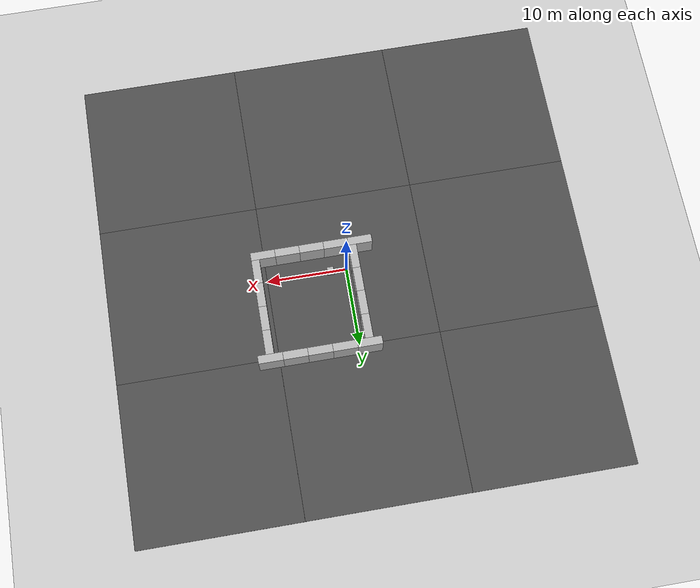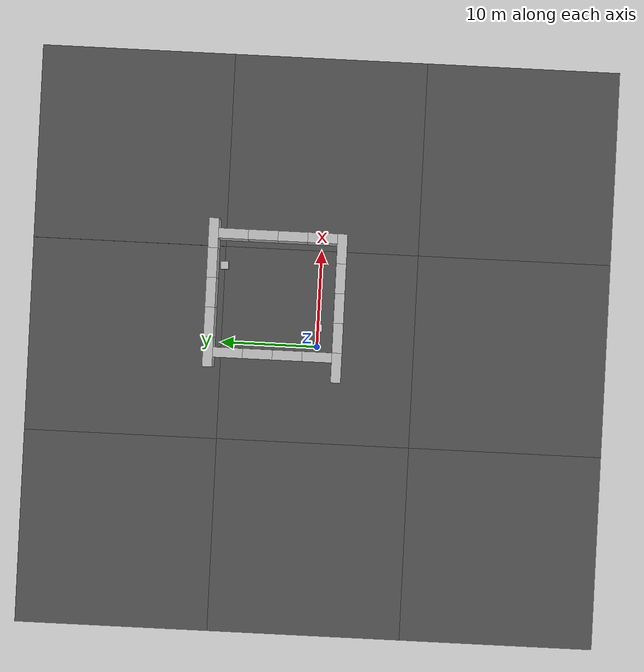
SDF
<sdf version="1.7">
 <world name="default">
  <light name="sun" type="directional">
   <pose>0 0 10 0 -0 0</pose>
   <diffuse>0.8 0.8 0.8 1</diffuse>
   <specular>0.2 0.2 0.2 1</specular>
   <attenuation>
    <range>1000</range>
    <constant>0.9</constant>
    <linear>0.01</linear>
    <quadratic>0.001</quadratic>
   </attenuation>
   <direction>-0.5 0.1 -0.9</direction>
   <spot><inner_angle>0</inner_angle><outer_angle>0</outer_angle><falloff>0</falloff></spot>
  </light>
  <model name="ground_plane">
   <static>1</static>
   <link name="link">
    <collision name="collision">
     <geometry><plane><normal>0 0 1</normal><size>100 100</size></plane></geometry>
     <surface><friction><ode><mu>100</mu><mu2>50</mu2></ode></friction></surface>
    </collision>
    <visual name="visual">
     <cast_shadows>0</cast_shadows>
     <geometry><plane><normal>0 0 1</normal><size>100 100</size></plane></geometry>
     <material>
      <script><uri>file://media/materials/scripts/gazebo.material</uri><name>Gazebo/Grey</name></script>
     </material>
    </visual>
   </link>
  </model>
  <model name="asphalt_plane">
   <static>1</static>
   <link name="link">
    <collision name="collision"><geometry><box><size>20 20 0.1</size></box></geometry></collision>
    <visual name="visual">
     <cast_shadows>0</cast_shadows>
     <geometry><box><size>20 20 0.1</size></box></geometry>
     <material>
      <script>
       <uri>model://asphalt_plane/materials/scripts</uri>
       <uri>model://asphalt_plane/materials/textures</uri>
       <name>vrc/asphalt</name>
      </script>
     </material>
    </visual>
   </link>
  </model>
  <physics name="default_physics" default="0" type="ode">
   <ode>
    <solver>
     <type>quick</type>
     <iters>10</iters>
     <sor>1.3</sor>
     <use_dynamic_moi_rescaling>0</use_dynamic_moi_rescaling>
    </solver>
    <constraints>
     <cfm>0</cfm>
     <erp>0.2</erp>
     <contact_max_correcting_vel>100</contact_max_correcting_vel>
     <contact_surface_layer>0.001</contact_surface_layer>
    </constraints>
   </ode>
   <max_step_size>0.004</max_step_size>
   <real_time_factor>1</real_time_factor>
   <real_time_update_rate>250</real_time_update_rate>
  </physics>
  <gravity>0 0 -9.8066</gravity>
  <magnetic_field>6e-06 2.3e-05 -4.2e-05</magnetic_field>
  <atmosphere type="adiabatic"/>
  <scene><ambient>0.4 0.4 0.4 1</ambient><background>0.7 0.7 0.7 1</background><shadows>1</shadows></scene>
  <model name="asphalt_plane_clone">
   <static>1</static>
   <link name="link">
    <collision name="collision"><geometry><box><size>20 20 0.1</size></box></geometry></collision>
    <visual name="visual">
     <cast_shadows>0</cast_shadows>
     <geometry><box><size>20 20 0.1</size></box></geometry>
     <material>
      <script>
       <uri>model://asphalt_plane/materials/scripts</uri>
       <uri>model://asphalt_plane/materials/textures</uri>
       <name>vrc/asphalt</name>
      </script>
     </material>
    </visual>
   </link>
   <pose>20 0 0 0 -0 0</pose>
  </model>
  <model name="asphalt_plane_clone_0">
   <static>1</static>
   <link name="link">
    <collision name="collision"><geometry><box><size>20 20 0.1</size></box></geometry></collision>
    <visual name="visual">
     <cast_shadows>0</cast_shadows>
     <geometry><box><size>20 20 0.1</size></box></geometry>
     <material>
      <script>
       <uri>model://asphalt_plane/materials/scripts</uri>
       <uri>model://asphalt_plane/materials/textures</uri>
       <name>vrc/asphalt</name>
      </script>
     </material>
    </visual>
   </link>
   <pose>0 -20 0 0 -0 0</pose>
  </model>
  <model name="asphalt_plane_clone_1">
   <static>1</static>
   <link name="link">
    <collision name="collision"><geometry><box><size>20 20 0.1</size></box></geometry></collision>
    <visual name="visual">
     <cast_shadows>0</cast_shadows>
     <geometry><box><size>20 20 0.1</size></box></geometry>
     <material>
      <script>
       <uri>model://asphalt_plane/materials/scripts</uri>
       <uri>model://asphalt_plane/materials/textures</uri>
       <name>vrc/asphalt</name>
      </script>
     </material>
    </visual>
   </link>
   <pose>20 -20 0 0 -0 0</pose>
  </model>
  <model name="asphalt_plane_clone_clone">
   <static>1</static>
   <link name="link">
    <collision name="collision"><geometry><box><size>20 20 0.1</size></box></geometry></collision>
    <visual name="visual">
     <cast_shadows>0</cast_shadows>
     <geometry><box><size>20 20 0.1</size></box></geometry>
     <material>
      <script>
       <uri>model://asphalt_plane/materials/scripts</uri>
       <uri>model://asphalt_plane/materials/textures</uri>
       <name>vrc/asphalt</name>
      </script>
     </material>
    </visual>
   </link>
   <pose>20 20 0 0 -0 0</pose>
  </model>
  <model name="asphalt_plane_clone_clone_0">
   <static>1</static>
   <link name="link">
    <collision name="collision"><geometry><box><size>20 20 0.1</size></box></geometry></collision>
    <visual name="visual">
     <cast_shadows>0</cast_shadows>
     <geometry><box><size>20 20 0.1</size></box></geometry>
     <material>
      <script>
       <uri>model://asphalt_plane/materials/scripts</uri>
       <uri>model://asphalt_plane/materials/textures</uri>
       <name>vrc/asphalt</name>
      </script>
     </material>
    </visual>
   </link>
   <pose>-0.007919 19.9917 0 0 -0 0</pose>
  </model>
  <model name="asphalt_plane_clone_clone_1">
   <static>1</static>
   <link name="link">
    <collision name="collision"><geometry><box><size>20 20 0.1</size></box></geometry></collision>
    <visual name="visual">
     <cast_shadows>0</cast_shadows>
     <geometry><box><size>20 20 0.1</size></box></geometry>
     <material>
      <script>
       <uri>model://asphalt_plane/materials/scripts</uri>
       <uri>model://asphalt_plane/materials/textures</uri>
       <name>vrc/asphalt</name>
      </script>
     </material>
    </visual>
   </link>
   <pose>-20 20 0 0 -0 0</pose>
  </model>
  <model name="asphalt_plane_clone_clone_2">
   <static>1</static>
   <link name="link">
    <collision name="collision"><geometry><box><size>20 20 0.1</size></box></geometry></collision>
    <visual name="visual">
     <cast_shadows>0</cast_shadows>
     <geometry><box><size>20 20 0.1</size></box></geometry>
     <material>
      <script>
       <uri>model://asphalt_plane/materials/scripts</uri>
       <uri>model://asphalt_plane/materials/textures</uri>
       <name>vrc/asphalt</name>
      </script>
     </material>
    </visual>
   </link>
   <pose>-20 0 0 0 -0 0</pose>
  </model>
  <model name="asphalt_plane_clone_clone_3">
   <static>1</static>
   <link name="link">
    <collision name="collision"><geometry><box><size>20 20 0.1</size></box></geometry></collision>
    <visual name="visual">
     <cast_shadows>0</cast_shadows>
     <geometry><box><size>20 20 0.1</size></box></geometry>
     <material>
      <script>
       <uri>model://asphalt_plane/materials/scripts</uri>
       <uri>model://asphalt_plane/materials/textures</uri>
       <name>vrc/asphalt</name>
      </script>
     </material>
    </visual>
   </link>
   <pose>-20 -20 0 0 -0 0</pose>
  </model>
  <model name="number1_clone">
   <pose>2 0 0.4 0 -0 0</pose>
   <static>1</static>
   <link name="link">
    <visual name="visual">
     <geometry><mesh><uri>model://number1/meshes/number.dae</uri></mesh></geometry>
     <material>
      <script>
       <uri>model://number1/materials/scripts</uri>
       <uri>model://number1/materials/textures</uri>
       <name>Number/One</name>
      </script>
     </material>
    </visual>
   </link>
  </model>
  <model name="number2_clone_clone">
   <pose>8 10 0.4 0 -0 0</pose>
   <static>1</static>
   <link name="link">
    <visual name="visual">
     <geometry><mesh><uri>model://number1/meshes/number.dae</uri></mesh></geometry>
     <material>
      <script>
       <uri>model://number2/materials/scripts</uri>
       <uri>model://number2/materials/textures</uri>
       <name>Number/Two</name>
      </script>
     </material>
    </visual>
   </link>
  </model>
  <model name="brick_box_3x1x3">
   <static>1</static>
   <link name="chassis">
    <pose>0 0 1.5 0 -0 0</pose>
    <collision name="collision"><geometry><box><size>3 1 3</size></box></geometry></collision>
    <visual name="visual">
     <geometry><mesh><uri>model://brick_box_3x1x3/meshes/simple_box.dae</uri><scale>3 1 3</scale></mesh></geometry>
     <material>
      <script>
       <uri>model://brick_box_3x1x3/materials/scripts</uri>
       <uri>model://brick_box_3x1x3/materials/textures</uri>
       <name>BrickBox/Diffuse</name>
      </script>
     </material>
    </visual>
   </link>
   <pose>11 11 1.5 0 -0 0</pose>
  </model>
  <model name="brick_box_3x1x3_clone">
   <static>1</static>
   <link name="chassis">
    <pose>0 0 1.5 0 -0 0</pose>
    <collision name="collision"><geometry><box><size>3 1 3</size></box></geometry></collision>
    <visual name="visual">
     <geometry><mesh><uri>model://brick_box_3x1x3/meshes/simple_box.dae</uri><scale>3 1 3</scale></mesh></geometry>
     <material>
      <script>
       <uri>model://brick_box_3x1x3/materials/scripts</uri>
       <uri>model://brick_box_3x1x3/materials/textures</uri>
       <name>BrickBox/Diffuse</name>
      </script>
     </material>
    </visual>
   </link>
   <pose>8 11 1.5 0 -0 0</pose>
  </model>
  <model name="brick_box_3x1x3_clone_clone">
   <static>1</static>
   <link name="chassis">
    <pose>0 0 1.5 0 -0 0</pose>
    <collision name="collision"><geometry><box><size>3 1 3</size></box></geometry></collision>
    <visual name="visual">
     <geometry><mesh><uri>model://brick_box_3x1x3/meshes/simple_box.dae</uri><scale>3 1 3</scale></mesh></geometry>
     <material>
      <script>
       <uri>model://brick_box_3x1x3/materials/scripts</uri>
       <uri>model://brick_box_3x1x3/materials/textures</uri>
       <name>BrickBox/Diffuse</name>
      </script>
     </material>
    </visual>
   </link>
   <pose>5 11 1.5 0 -0 0</pose>
  </model>
  <model name="brick_box_3x1x3_clone_clone_clone">
   <static>1</static>
   <link name="chassis">
    <pose>0 0 1.5 0 -0 0</pose>
    <collision name="collision"><geometry><box><size>3 1 3</size></box></geometry></collision>
    <visual name="visual">
     <geometry><mesh><uri>model://brick_box_3x1x3/meshes/simple_box.dae</uri><scale>3 1 3</scale></mesh></geometry>
     <material>
      <script>
       <uri>model://brick_box_3x1x3/materials/scripts</uri>
       <uri>model://brick_box_3x1x3/materials/textures</uri>
       <name>BrickBox/Diffuse</name>
      </script>
     </material>
    </visual>
   </link>
   <pose>2 11 1.5 0 -0 0</pose>
  </model>
  <model name="brick_box_3x1x3_clone_0">
   <static>1</static>
   <link name="chassis">
    <pose>0 0 1.5 0 -0 0</pose>
    <collision name="collision"><geometry><box><size>3 1 3</size></box></geometry></collision>
    <visual name="visual">
     <geometry><mesh><uri>model://brick_box_3x1x3/meshes/simple_box.dae</uri><scale>3 1 3</scale></mesh></geometry>
     <material>
      <script>
       <uri>model://brick_box_3x1x3/materials/scripts</uri>
       <uri>model://brick_box_3x1x3/materials/textures</uri>
       <name>BrickBox/Diffuse</name>
      </script>
     </material>
    </visual>
   </link>
   <pose>11 9 1.5 0 -0 1.57</pose>
  </model>
  <model name="brick_box_3x1x3_clone_0_clone">
   <static>1</static>
   <link name="chassis">
    <pose>0 0 1.5 0 -0 0</pose>
    <collision name="collision"><geometry><box><size>3 1 3</size></box></geometry></collision>
    <visual name="visual">
     <geometry><mesh><uri>model://brick_box_3x1x3/meshes/simple_box.dae</uri><scale>3 1 3</scale></mesh></geometry>
     <material>
      <script>
       <uri>model://brick_box_3x1x3/materials/scripts</uri>
       <uri>model://brick_box_3x1x3/materials/textures</uri>
       <name>BrickBox/Diffuse</name>
      </script>
     </material>
    </visual>
   </link>
   <pose>11 6 1.5 0 -0 1.57</pose>
  </model>
  <model name="brick_box_3x1x3_clone_0_clone_0">
   <static>1</static>
   <link name="chassis">
    <pose>0 0 1.5 0 -0 0</pose>
    <collision name="collision"><geometry><box><size>3 1 3</size></box></geometry></collision>
    <visual name="visual">
     <geometry><mesh><uri>model://brick_box_3x1x3/meshes/simple_box.dae</uri><scale>3 1 3</scale></mesh></geometry>
     <material>
      <script>
       <uri>model://brick_box_3x1x3/materials/scripts</uri>
       <uri>model://brick_box_3x1x3/materials/textures</uri>
       <name>BrickBox/Diffuse</name>
      </script>
     </material>
    </visual>
   </link>
   <pose>11 3 1.5 0 -0 1.57</pose>
  </model>
  <model name="brick_box_3x1x3_clone_0_clone_0_clone">
   <static>1</static>
   <link name="chassis">
    <pose>0 0 1.5 0 -0 0</pose>
    <collision name="collision"><geometry><box><size>3 1 3</size></box></geometry></collision>
    <visual name="visual">
     <geometry><mesh><uri>model://brick_box_3x1x3/meshes/simple_box.dae</uri><scale>3 1 3</scale></mesh></geometry>
     <material>
      <script>
       <uri>model://brick_box_3x1x3/materials/scripts</uri>
       <uri>model://brick_box_3x1x3/materials/textures</uri>
       <name>BrickBox/Diffuse</name>
      </script>
     </material>
    </visual>
   </link>
   <pose>11 0 1.5 0 -0 1.57</pose>
  </model>
  <model name="brick_box_3x1x3_clone_clone_clone_clone">
   <static>1</static>
   <link name="chassis">
    <pose>0 0 1.5 0 -0 0</pose>
    <collision name="collision"><geometry><box><size>3 1 3</size></box></geometry></collision>
    <visual name="visual">
     <geometry><mesh><uri>model://brick_box_3x1x3/meshes/simple_box.dae</uri><scale>3 1 3</scale></mesh></geometry>
     <material>
      <script>
       <uri>model://brick_box_3x1x3/materials/scripts</uri>
       <uri>model://brick_box_3x1x3/materials/textures</uri>
       <name>BrickBox/Diffuse</name>
      </script>
     </material>
    </visual>
   </link>
   <pose>10 -2 1.5 0 -0 0</pose>
  </model>
  <model name="brick_box_3x1x3_clone_clone_clone_clone_clone">
   <static>1</static>
   <link name="chassis">
    <pose>0 0 1.5 0 -0 0</pose>
    <collision name="collision"><geometry><box><size>3 1 3</size></box></geometry></collision>
    <visual name="visual">
     <geometry><mesh><uri>model://brick_box_3x1x3/meshes/simple_box.dae</uri><scale>3 1 3</scale></mesh></geometry>
     <material>
      <script>
       <uri>model://brick_box_3x1x3/materials/scripts</uri>
       <uri>model://brick_box_3x1x3/materials/textures</uri>
       <name>BrickBox/Diffuse</name>
      </script>
     </material>
    </visual>
   </link>
   <pose>7 -2 1.5 0 -0 0</pose>
  </model>
  <model name="brick_box_3x1x3_clone_clone_clone_clone_clone_clone">
   <static>1</static>
   <link name="chassis">
    <pose>0 0 1.5 0 -0 0</pose>
    <collision name="collision"><geometry><box><size>3 1 3</size></box></geometry></collision>
    <visual name="visual">
     <geometry><mesh><uri>model://brick_box_3x1x3/meshes/simple_box.dae</uri><scale>3 1 3</scale></mesh></geometry>
     <material>
      <script>
       <uri>model://brick_box_3x1x3/materials/scripts</uri>
       <uri>model://brick_box_3x1x3/materials/textures</uri>
       <name>BrickBox/Diffuse</name>
      </script>
     </material>
    </visual>
   </link>
   <pose>4 -2 1.5 0 -0 0</pose>
  </model>
  <model name="brick_box_3x1x3_clone_clone_clone_clone_clone_clone_clone">
   <static>1</static>
   <link name="chassis">
    <pose>0 0 1.5 0 -0 0</pose>
    <collision name="collision"><geometry><box><size>3 1 3</size></box></geometry></collision>
    <visual name="visual">
     <geometry><mesh><uri>model://brick_box_3x1x3/meshes/simple_box.dae</uri><scale>3 1 3</scale></mesh></geometry>
     <material>
      <script>
       <uri>model://brick_box_3x1x3/materials/scripts</uri>
       <uri>model://brick_box_3x1x3/materials/textures</uri>
       <name>BrickBox/Diffuse</name>
      </script>
     </material>
    </visual>
   </link>
   <pose>1 -2 1.5 0 -0 0</pose>
  </model>
  <model name="brick_box_3x1x3_clone_clone_clone_clone_clone_clone_clone_clone">
   <static>1</static>
   <link name="chassis">
    <pose>0 0 1.5 0 -0 0</pose>
    <collision name="collision"><geometry><box><size>3 1 3</size></box></geometry></collision>
    <visual name="visual">
     <geometry><mesh><uri>model://brick_box_3x1x3/meshes/simple_box.dae</uri><scale>3 1 3</scale></mesh></geometry>
     <material>
      <script>
       <uri>model://brick_box_3x1x3/materials/scripts</uri>
       <uri>model://brick_box_3x1x3/materials/textures</uri>
       <name>BrickBox/Diffuse</name>
      </script>
     </material>
    </visual>
   </link>
   <pose>-2 -2 1.5 0 -0 0</pose>
  </model>
  <model name="brick_box_3x1x3_clone_0_clone_0_clone_clone">
   <static>1</static>
   <link name="chassis">
    <pose>0 0 1.5 0 -0 0</pose>
    <collision name="collision"><geometry><box><size>3 1 3</size></box></geometry></collision>
    <visual name="visual">
     <geometry><mesh><uri>model://brick_box_3x1x3/meshes/simple_box.dae</uri><scale>3 1 3</scale></mesh></geometry>
     <material>
      <script>
       <uri>model://brick_box_3x1x3/materials/scripts</uri>
       <uri>model://brick_box_3x1x3/materials/textures</uri>
       <name>BrickBox/Diffuse</name>
      </script>
     </material>
    </visual>
   </link>
   <pose>-1 0 1.5 0 -0 1.57</pose>
  </model>
  <model name="brick_box_3x1x3_clone_0_clone_0_clone_clone_clone">
   <static>1</static>
   <link name="chassis">
    <pose>0 0 1.5 0 -0 0</pose>
    <collision name="collision"><geometry><box><size>3 1 3</size></box></geometry></collision>
    <visual name="visual">
     <geometry><mesh><uri>model://brick_box_3x1x3/meshes/simple_box.dae</uri><scale>3 1 3</scale></mesh></geometry>
     <material>
      <script>
       <uri>model://brick_box_3x1x3/materials/scripts</uri>
       <uri>model://brick_box_3x1x3/materials/textures</uri>
       <name>BrickBox/Diffuse</name>
      </script>
     </material>
    </visual>
   </link>
   <pose>-1 3 1.5 0 -0 1.57</pose>
  </model>
  <model name="brick_box_3x1x3_clone_0_clone_0_clone_clone_clone_clone">
   <static>1</static>
   <link name="chassis">
    <pose>0 0 1.5 0 -0 0</pose>
    <collision name="collision"><geometry><box><size>3 1 3</size></box></geometry></collision>
    <visual name="visual">
     <geometry><mesh><uri>model://brick_box_3x1x3/meshes/simple_box.dae</uri><scale>3 1 3</scale></mesh></geometry>
     <material>
      <script>
       <uri>model://brick_box_3x1x3/materials/scripts</uri>
       <uri>model://brick_box_3x1x3/materials/textures</uri>
       <name>BrickBox/Diffuse</name>
      </script>
     </material>
    </visual>
   </link>
   <pose>-1 6 1.5 0 -0 1.57</pose>
  </model>
  <model name="brick_box_3x1x3_clone_0_clone_0_clone_clone_clone_clone_clone">
   <static>1</static>
   <link name="chassis">
    <pose>0 0 1.5 0 -0 0</pose>
    <collision name="collision"><geometry><box><size>3 1 3</size></box></geometry></collision>
    <visual name="visual">
     <geometry><mesh><uri>model://brick_box_3x1x3/meshes/simple_box.dae</uri><scale>3 1 3</scale></mesh></geometry>
     <material>
      <script>
       <uri>model://brick_box_3x1x3/materials/scripts</uri>
       <uri>model://brick_box_3x1x3/materials/textures</uri>
       <name>BrickBox/Diffuse</name>
      </script>
     </material>
    </visual>
   </link>
   <pose>-1 9 1.5 0 -0 1.57</pose>
  </model>
  <model name="brick_box_3x1x3_clone_clone_clone_clone_0">
   <static>1</static>
   <link name="chassis">
    <pose>0 0 1.5 0 -0 0</pose>
    <collision name="collision"><geometry><box><size>3 1 3</size></box></geometry></collision>
    <visual name="visual">
     <geometry><mesh><uri>model://brick_box_3x1x3/meshes/simple_box.dae</uri><scale>3 1 3</scale></mesh></geometry>
     <material>
      <script>
       <uri>model://brick_box_3x1x3/materials/scripts</uri>
       <uri>model://brick_box_3x1x3/materials/textures</uri>
       <name>BrickBox/Diffuse</name>
      </script>
     </material>
    </visual>
   </link>
   <pose>-1 11 1.5 0 -0 0</pose>
  </model>
  <spherical_coordinates>
   <surface_model>EARTH_WGS84</surface_model>
   <latitude_deg>-34.660019</latitude_deg>
   <longitude_deg>-58.468302</longitude_deg>
   <elevation>14</elevation>
  </spherical_coordinates>
 </world>
</sdf>
